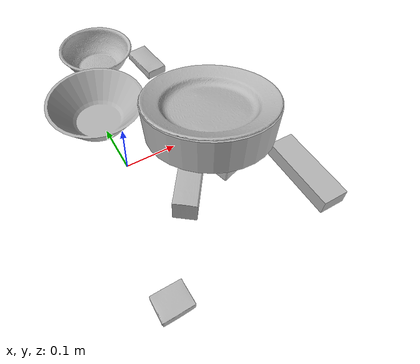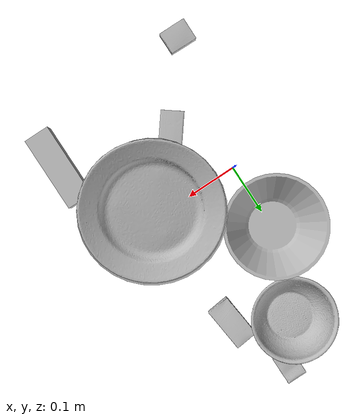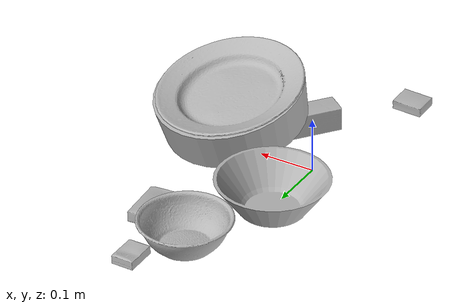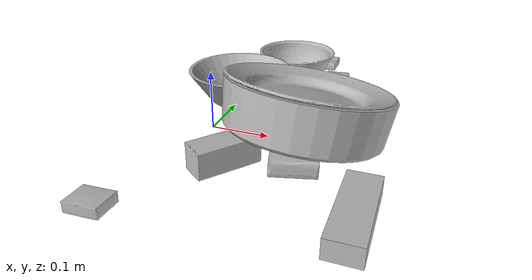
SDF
<sdf version="1.4">
  <world name="default">
    <light name="light1" type="point">
      <pose>0 0 1 0 0 0</pose>
      <diffuse>3 3 3 1</diffuse>
      <specular>3 3 3 1</specular>
    </light>
    <light name="light2" type="point">
      <pose>0 0.5 2 0 0 0</pose>
      <diffuse>1 1 1 1</diffuse>
      <specular>1 1 1 1</specular>
    </light>
    <light name="light3" type="point">
      <pose>0 0.5 2 0 0 0</pose>
      <diffuse>3 3 3 1</diffuse>
      <specular>3 3 3 1</specular>
    </light>
    <scene>
      <ambient>0.7 0.7 0.7</ambient>
    </scene>
    <model name="box1">
      <link name="link_box1">
        <collision name="default">
          <geometry>
            <mesh>
              <uri>model://jenga/collision_meshes/collision.obj</uri>
              <scale>1.0 1.0 1.0</scale>
            </mesh>
          </geometry>
          <surface>
            <friction>
              <ode>
                <mu>0.5</mu>
                <mu2>0.5</mu2>
              </ode>
            </friction>
          <contact>
        <ode>
            <max_vel>0</max_vel>
            <min_depth>0.0001</min_depth>
            <kp>1e8</kp>
        </ode>
    </contact></surface>
        </collision>
        <visual name="default">
          <geometry>
            <mesh>
              <uri>model://jenga/visual_meshes/visual.dae</uri>
              <scale>1.0 1.0 1.0</scale>
            </mesh>
          </geometry>
        </visual>
        <inertial>
          <mass>0.21843092143535614</mass>
          <pose>-2.502855807051674e-07 -0.00010250011109746993 -4.092339804628864e-05 0.0 -7.342154049184251e-07 0.0</pose>
          <inertia>
            <ixx>6.0445138e-05</ixx>
            <iyy>0.0004095746</iyy>
            <izz>0.00043725572</izz>
            <ixy>0</ixy>
            <ixz>0</ixz>
            <iyz>0</iyz>
          </inertia>
        </inertial>
      </link>
      <pose>0.27519699931144714 -0.18016718327999115 0.014999999664723873 5.042134246156955e-08 -3.7478289349113834e-10 1.5707967983285693</pose>
    </model>
    <model name="box11">
      <link name="link_box11">
        <collision name="default">
          <geometry>
            <mesh>
              <uri>model://pudding_box/collision_meshes/collision.obj</uri>
              <scale>0.5 0.5 0.5</scale>
            </mesh>
          </geometry>
          <surface>
            <friction>
              <ode>
                <mu>0.5</mu>
                <mu2>0.5</mu2>
              </ode>
            </friction>
          <contact>
        <ode>
            <max_vel>0</max_vel>
            <min_depth>0.0001</min_depth>
            <kp>1e8</kp>
        </ode>
    </contact></surface>
        </collision>
        <visual name="default">
          <geometry>
            <mesh>
              <uri>model://pudding_box/visual_meshes/visual.dae</uri>
              <scale>0.5 0.5 0.5</scale>
            </mesh>
          </geometry>
        </visual>
        <inertial>
          <mass>0.04130476340651512</mass>
          <pose>0.00024474109522998333 0.00040339428232982755 -0.0002594413817860186 0.005213101341234124 -0.006603795469139562 0.020079830758209564</pose>
          <inertia>
            <ixx>1.1673226e-05</ixx>
            <iyy>7.85383e-06</iyy>
            <izz>1.723857e-05</izz>
            <ixy>0</ixy>
            <ixz>0</ixz>
            <iyz>0</iyz>
          </inertia>
        </inertial>
      </link>
      <pose>-0.04886236786842346 -0.26520439982414246 0.009862903505563736 0.02234850848369236 -0.01139167351645276 -1.5759617672548991</pose>
    </model>
    <model name="box2">
      <link name="link_box2">
        <collision name="default">
          <geometry>
            <mesh>
              <uri>model://gelatin_box/collision_meshes/collision.obj</uri>
              <scale>1.0 1.0 1.0</scale>
            </mesh>
          </geometry>
          <surface>
            <friction>
              <ode>
                <mu>0.5</mu>
                <mu2>0.5</mu2>
              </ode>
            </friction>
          <contact>
        <ode>
            <max_vel>0</max_vel>
            <min_depth>0.0001</min_depth>
            <kp>1e8</kp>
        </ode>
    </contact></surface>
        </collision>
        <visual name="default">
          <geometry>
            <mesh>
              <uri>model://gelatin_box/visual_meshes/visual.dae</uri>
              <scale>1.0 1.0 1.0</scale>
            </mesh>
          </geometry>
        </visual>
        <inertial>
          <mass>0.24153950810432434</mass>
          <pose>0.0004319618456065655 0.00011156871914863586 -0.0003640321083366871 -0.001050371984258798 -0.004755819621622892 0.016440559472145032</pose>
          <inertia>
            <ixx>0.00017050719</ixx>
            <iyy>0.00012179239</iyy>
            <izz>0.0002595499</izz>
            <ixy>0</ixy>
            <ixz>0</ixz>
            <iyz>0</iyz>
          </inertia>
        </inertial>
      </link>
      <pose>0.16480392217636108 -0.06897806376218796 0.015497254207730293 0.0008016153123082569 -0.022398839256795432 -2.8669638128610706</pose>
    </model>
    <model name="box21">
      <link name="link_box21">
        <collision name="default">
          <geometry>
            <mesh>
              <uri>model://cracker_box/collision_meshes/collision.obj</uri>
              <scale>0.25 0.25 0.25</scale>
            </mesh>
          </geometry>
          <surface>
            <friction>
              <ode>
                <mu>0.5</mu>
                <mu2>0.5</mu2>
              </ode>
            </friction>
          <contact>
        <ode>
            <max_vel>0</max_vel>
            <min_depth>0.0001</min_depth>
            <kp>1e8</kp>
        </ode>
    </contact></surface>
        </collision>
        <visual name="default">
          <geometry>
            <mesh>
              <uri>model://cracker_box/visual_meshes/visual.dae</uri>
              <scale>0.25 0.25 0.25</scale>
            </mesh>
          </geometry>
        </visual>
        <inertial>
          <mass>0.04855586588382721</mass>
          <pose>0.00023660322767682374 6.358561222441494e-05 -0.00042573834070935845 -0.00031620783521113603 -0.01110649053142329 0.0025467954689779603</pose>
          <inertia>
            <ixx>7.719027e-06</ixx>
            <iyy>1.2745631e-05</iyy>
            <izz>1.8189185e-05</izz>
            <ixy>0</ixy>
            <ixz>0</ixz>
            <iyz>0</iyz>
          </inertia>
        </inertial>
      </link>
      <pose>0.11731277406215668 0.37334969639778137 0.009096031077206135 -0.014053343486113024 -0.0050130929225987355 -1.5680035730187838</pose>
    </model>
    <model name="box3">
      <link name="link_box3">
        <collision name="default">
          <geometry>
            <mesh>
              <uri>model://wood_block/collision_meshes/collision.obj</uri>
              <scale>0.5 0.5 0.5</scale>
            </mesh>
          </geometry>
          <surface>
            <friction>
              <ode>
                <mu>0.5</mu>
                <mu2>0.5</mu2>
              </ode>
            </friction>
          <contact>
        <ode>
            <max_vel>0</max_vel>
            <min_depth>0.0001</min_depth>
            <kp>1e8</kp>
        </ode>
    </contact></surface>
        </collision>
        <visual name="default">
          <geometry>
            <mesh>
              <uri>model://wood_block/visual_meshes/visual.dae</uri>
              <scale>0.5 0.5 0.5</scale>
            </mesh>
          </geometry>
        </visual>
        <inertial>
          <mass>0.17342756688594818</mass>
          <pose>-2.906657982748584e-06 -0.000285404734313488 0.00013204291462898254 -0.052208426481931185 -0.005192696107352816 -0.006861379630616638</pose>
          <inertia>
            <ixx>5.8018082e-05</ixx>
            <iyy>0.00018327912</iyy>
            <izz>0.00018259356</izz>
            <ixy>0</ixy>
            <ixz>0</ixz>
            <iyz>0</iyz>
          </inertia>
        </inertial>
      </link>
      <pose>0.0693572461605072 -0.10898828506469727 0.02263033203780651 -0.005338437942820675 0.0057230568701280805 0.9197161992709019</pose>
    </model>
    <model name="box31">
      <link name="link_box31">
        <collision name="default">
          <geometry>
            <mesh>
              <uri>model://sugar_box/collision_meshes/collision.obj</uri>
              <scale>0.5 0.5 0.5</scale>
            </mesh>
          </geometry>
          <surface>
            <friction>
              <ode>
                <mu>0.5</mu>
                <mu2>0.5</mu2>
              </ode>
            </friction>
          <contact>
        <ode>
            <max_vel>0</max_vel>
            <min_depth>0.0001</min_depth>
            <kp>1e8</kp>
        </ode>
    </contact></surface>
        </collision>
        <visual name="default">
          <geometry>
            <mesh>
              <uri>model://sugar_box/visual_meshes/visual.dae</uri>
              <scale>0.5 0.5 0.5</scale>
            </mesh>
          </geometry>
        </visual>
        <inertial>
          <mass>0.102778859436512</mass>
          <pose>0.0005171863595023751 1.924554817378521e-05 -0.00018182402709499002 -0.00040462592244169 0.0010506634051582892 0.0026153783234817013</pose>
          <inertia>
            <ixx>2.1408765e-05</ixx>
            <iyy>6.919753e-05</iyy>
            <izz>8.2837694e-05</izz>
            <ixy>0</ixy>
            <ixz>0</ixz>
            <iyz>0</iyz>
          </inertia>
        </inertial>
      </link>
      <pose>0.16294622421264648 0.24365948140621185 0.011399311013519764 0.0007751131667161669 -0.023432507777414322 1.6803305243947717</pose>
    </model>
    <model name="plate1">
      <link name="link_plate1">
        <collision name="default">
          <geometry>
            <mesh>
              <uri>model://pan_tefal/collision_meshes/collision.obj</uri>
              <scale>1.0 1.0 1.0</scale>
            </mesh>
          </geometry>
          <surface>
            <friction>
              <ode>
                <mu>0.5</mu>
                <mu2>0.5</mu2>
              </ode>
            </friction>
          <contact>
        <ode>
            <max_vel>0</max_vel>
            <min_depth>0.0001</min_depth>
            <kp>1e8</kp>
        </ode>
    </contact></surface>
        </collision>
        <visual name="default">
          <geometry>
            <mesh>
              <uri>model://pan_tefal/visual_meshes/visual.dae</uri>
              <scale>1.0 1.0 1.0</scale>
            </mesh>
          </geometry>
        </visual>
        <inertial>
          <mass>1.4199398756027222</mass>
          <pose>-0.00018002341676037759 3.278919029980898e-05 -0.00851493515074253 0.0008190238651519852 -0.0003301374854212985 -0.3318555266382279</pose>
          <inertia>
            <ixx>0.009801778</ixx>
            <iyy>0.009864969</iyy>
            <izz>0.01804318</izz>
            <ixy>0</ixy>
            <ixz>0</ixz>
            <iyz>0</iyz>
          </inertia>
        </inertial>
      </link>
      <pose>0.16739684343338013 -0.01731451228260994 0.06803667545318604 -0.07521878956837882 0.21674956066623627 0.8383791343523611</pose>
    </model>
    <model name="bowl1">
      <link name="link_bowl1">
        <collision name="default">
          <geometry>
            <mesh>
              <uri>model://bowl/collision_meshes/collision.obj</uri>
              <scale>1.0 1.0 1.0</scale>
            </mesh>
          </geometry>
          <surface>
            <friction>
              <ode>
                <mu>0.5</mu>
                <mu2>0.5</mu2>
              </ode>
            </friction>
          <contact>
        <ode>
            <max_vel>0</max_vel>
            <min_depth>0.0001</min_depth>
            <kp>1e8</kp>
        </ode>
    </contact></surface>
        </collision>
        <visual name="default">
          <geometry>
            <mesh>
              <uri>model://bowl/visual_meshes/visual.dae</uri>
              <scale>1.0 1.0 1.0</scale>
            </mesh>
          </geometry>
        </visual>
        <inertial>
          <mass>0.10393582284450531</mass>
          <pose>0.00020445296831894666 -0.001030207728035748 -0.0008042644476518035 -0.01576405922653839 0.014546845721322095 0.7140430703653545</pose>
          <inertia>
            <ixx>0.00023874876</ixx>
            <iyy>0.00023341418</iyy>
            <izz>0.00040165734</izz>
            <ixy>0</ixy>
            <ixz>0</ixz>
            <iyz>0</iyz>
          </inertia>
        </inertial>
      </link>
      <pose>0.06266412138938904 0.29682567715644836 0.02778000570833683 -1.2616772233152834e-07 -2.2147383955830995e-07 -1.3676664015963447</pose>
    </model>
    <model name="plate2">
      <link name="link_plate2">
        <collision name="default">
          <geometry>
            <mesh>
              <uri>model://plate/collision_meshes/collision.obj</uri>
              <scale>1.0 1.0 1.0</scale>
            </mesh>
          </geometry>
          <surface>
            <friction>
              <ode>
                <mu>0.5</mu>
                <mu2>0.5</mu2>
              </ode>
            </friction>
          <contact>
        <ode>
            <max_vel>0</max_vel>
            <min_depth>0.0001</min_depth>
            <kp>1e8</kp>
        </ode>
    </contact></surface>
        </collision>
        <visual name="default">
          <geometry>
            <mesh>
              <uri>model://plate/visual_meshes/visual.dae</uri>
              <scale>1.0 1.0 1.0</scale>
            </mesh>
          </geometry>
        </visual>
        <inertial>
          <mass>0.11643410474061966</mass>
          <pose>-0.0006044629844836891 0.000278257648460567 -0.001056199660524726 0.0022187586917557377 -0.0032254970862864826 0.45261837235677477</pose>
          <inertia>
            <ixx>0.00054468104</ixx>
            <iyy>0.0005394714</iyy>
            <izz>0.0010653147</izz>
            <ixy>0</ixy>
            <ixz>0</ixz>
            <iyz>0</iyz>
          </inertia>
        </inertial>
      </link>
      <pose>0.1689993292093277 -0.013501369394361973 0.09932529181241989 0.12294721058256952 0.2023757039904961 1.7450020478440897</pose>
    </model>
    <model name="bowl2">
      <link name="link_bowl2">
        <collision name="default">
          <geometry>
            <mesh>
              <uri>model://bowl_a/collision_meshes/collision.obj</uri>
              <scale>1.0 1.0 1.0</scale>
            </mesh>
          </geometry>
          <surface>
            <friction>
              <ode>
                <mu>0.5</mu>
                <mu2>0.5</mu2>
              </ode>
            </friction>
          <contact>
        <ode>
            <max_vel>0</max_vel>
            <min_depth>0.0001</min_depth>
            <kp>1e8</kp>
        </ode>
    </contact></surface>
        </collision>
        <visual name="default">
          <geometry>
            <mesh>
              <uri>model://bowl_a/visual_meshes/visual.dae</uri>
              <scale>1.0 1.0 1.0</scale>
            </mesh>
          </geometry>
        </visual>
        <inertial>
          <mass>0.4875580668449402</mass>
          <pose>0.00027867365861311555 4.73092841275502e-05 -0.0013765289913862944 -0.0009805446644095745 -0.0010938154105800495 -0.1912289991244328</pose>
          <inertia>
            <ixx>0.0013881001</ixx>
            <iyy>0.0013966226</iyy>
            <izz>0.0024687892</izz>
            <ixy>0</ixy>
            <ixz>0</ixz>
            <iyz>0</iyz>
          </inertia>
        </inertial>
      </link>
      <pose>-0.002800499787554145 0.13390295207500458 0.030383192002773285 -9.60953664659776e-06 3.5956901989573416e-06 1.8279818307705367</pose>
    </model>
  <physics type="ode">
      <max_contacts>50</max_contacts>
      <ode>
        <solver>
          <type>quick</type>
          <iters>75</iters>
        </solver>
        <constraints>
          <contact_max_correcting_vel>0</contact_max_correcting_vel>
          <contact_surface_layer>0</contact_surface_layer>
        </constraints>
      </ode>
    </physics></world>
</sdf>
